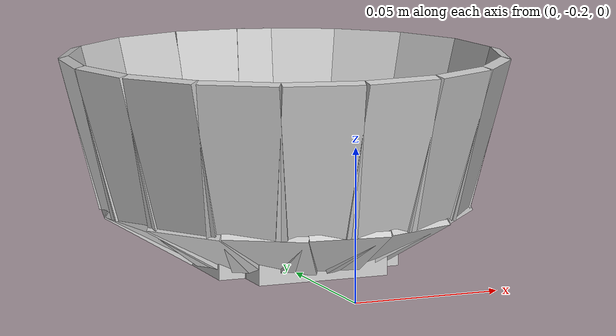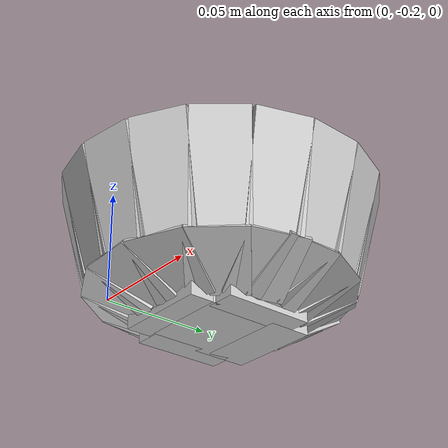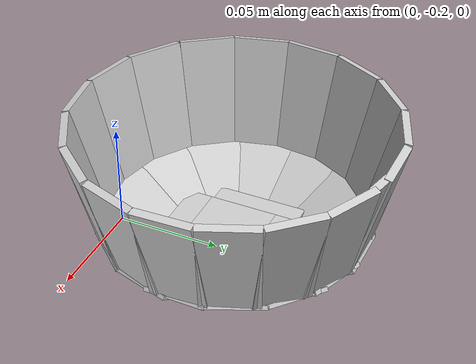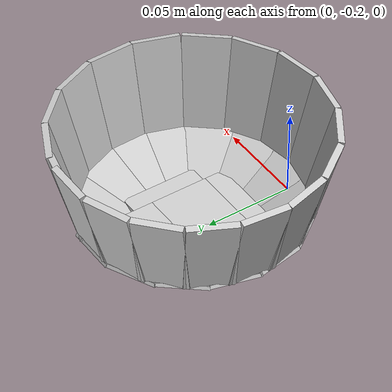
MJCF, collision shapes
<?xml version='1.0' encoding='utf-8'?>
<mujoco model="large_akita_red_bowl">
  <asset>
    <texture file="red_texture.png" name="tex-akita_red_bowl" type="2d" />
    <material name="akita_red_bowl" reflectance="0.5" texrepeat="1 1" texture="tex-akita_red_bowl" texuniform="false" />
    <mesh file="visual/akita_bowl_vis.msh" name="akita_bowl_vis" scale="0.98 0.98 0.98" />
  </asset>
  <worldbody>
    <body>
      <body name="object" pos="0.0 -0.13999999999999999 0.0">
        <geom solimp="0.998 0.998 0.001" solref="0.001 1" density="100" friction="0.95 0.3 0.1" type="mesh" mesh="akita_bowl_vis" conaffinity="0" contype="0" group="1" material="akita_red_bowl" />
        <geom solimp="0.998 0.998 0.001" solref="0.001 1" density="100" friction="0.95 0.3 0.1" type="box" pos="-0.00014 0.047054 0.013146" quat="0.60990 -0.35780 -0.35780 -0.60990" size="0.0009939999999999999 0.013888 0.016618" group="0" rgba="0.8 0.8 0.8 0.3" />
        <geom solimp="0.998 0.998 0.001" solref="0.001 1" density="100" friction="0.95 0.3 0.1" type="box" pos="-0.020565999999999997 0.042238 0.013425999999999999" quat="0.45959 -0.42672 0.26704 0.73169" size="0.0009939999999999999 0.013888 0.016618" group="0" rgba="0.8 0.8 0.8 0.3" />
        <geom solimp="0.998 0.998 0.001" solref="0.001 1" density="100" friction="0.95 0.3 0.1" type="box" pos="-0.036469999999999995 0.029512 0.013649999999999999" quat="0.29172 -0.47299 0.16619 0.81459" size="0.0009939999999999999 0.013888 0.016618" group="0" rgba="0.8 0.8 0.8 0.3" />
        <geom solimp="0.998 0.998 0.001" solref="0.001 1" density="100" friction="0.95 0.3 0.1" type="box" pos="-0.045542 0.011101999999999999 0.013775999999999998" quat="0.10855 -0.49698 0.05658 0.85908" size="0.0009939999999999999 0.013888 0.016618" group="0" rgba="0.8 0.8 0.8 0.3" />
        <geom solimp="0.998 0.998 0.001" solref="0.001 1" density="100" friction="0.95 0.3 0.1" type="box" pos="-0.046018 -0.008889999999999999 0.013775999999999998" quat="0.49761 -0.07722 0.86246 0.05074" size="0.0009939999999999999 0.013888 0.016618" group="0" rgba="0.8 0.8 0.8 0.3" />
        <geom solimp="0.998 0.998 0.001" solref="0.001 1" density="100" friction="0.95 0.3 0.1" type="box" pos="-0.037688 -0.02786 0.013775999999999998" quat="0.47408 -0.26597 0.82406 0.15949" size="0.0009939999999999999 0.013888 0.016618" group="0" rgba="0.8 0.8 0.8 0.3" />
        <geom solimp="0.998 0.998 0.001" solref="0.001 1" density="100" friction="0.95 0.3 0.1" type="box" pos="-0.021797999999999998 -0.041496 0.013775999999999998" quat="0.42646 -0.44336 0.74380 0.26138" size="0.0009939999999999999 0.013888 0.016618" group="0" rgba="0.8 0.8 0.8 0.3" />
        <geom solimp="0.998 0.998 0.001" solref="0.001 1" density="100" friction="0.95 0.3 0.1" type="box" pos="-0.0016939999999999998 -0.04684399999999999 0.013775999999999998" quat="0.59728 0.35787 0.34946 -0.62695" size="0.0009939999999999999 0.013888 0.016618" group="0" rgba="0.8 0.8 0.8 0.3" />
        <geom solimp="0.998 0.998 0.001" solref="0.001 1" density="100" friction="0.95 0.3 0.1" type="box" pos="0.018913999999999997 -0.042881999999999997 0.013775999999999998" quat="0.72249 0.27055 0.42070 -0.47731" size="0.0009939999999999999 0.013888 0.016618" group="0" rgba="0.8 0.8 0.8 0.3" />
        <geom solimp="0.998 0.998 0.001" solref="0.001 1" density="100" friction="0.95 0.3 0.1" type="box" pos="0.035322 -0.030813999999999994 0.013775999999999998" quat="0.17267 -0.80894 0.30891 0.46945" size="0.0009939999999999999 0.013888 0.016618" group="0" rgba="0.8 0.8 0.8 0.3" />
        <geom solimp="0.998 0.998 0.001" solref="0.001 1" density="100" friction="0.95 0.3 0.1" type="box" pos="0.045107999999999995 -0.01274 0.013775999999999998" quat="0.85700 0.06550 0.49588 -0.12397" size="0.0009939999999999999 0.013888 0.016618" group="0" rgba="0.8 0.8 0.8 0.3" />
        <geom solimp="0.998 0.998 0.001" solref="0.001 1" density="100" friction="0.95 0.3 0.1" type="box" pos="0.045107999999999995 -0.01274 0.013775999999999998" quat="0.85700 0.06550 0.49588 -0.12397" size="0.0009939999999999999 0.013888 0.016618" group="0" rgba="0.8 0.8 0.8 0.3" />
        <geom solimp="0.998 0.998 0.001" solref="0.001 1" density="100" friction="0.95 0.3 0.1" type="box" pos="0.046872000000000004 0.000308 0.013775999999999998" quat="0.86591 -0.00473 0.50017 -0.00248" size="0.0009939999999999999 0.013888 0.016618" group="0" rgba="0.8 0.8 0.8 0.3" />
        <geom solimp="0.998 0.998 0.001" solref="0.001 1" density="100" friction="0.95 0.3 0.1" type="box" pos="0.042504 0.019753999999999997 0.013775999999999998" quat="0.84663 -0.11101 0.48771 0.18175" size="0.0009939999999999999 0.013888 0.016618" group="0" rgba="0.8 0.8 0.8 0.3" />
        <geom solimp="0.998 0.998 0.001" solref="0.001 1" density="100" friction="0.95 0.3 0.1" type="box" pos="0.030183999999999996 0.035868 0.013775999999999998" quat="0.21392 0.78724 0.36065 -0.45213" size="0.0009939999999999999 0.013888 0.016618" group="0" rgba="0.8 0.8 0.8 0.3" />
        <geom solimp="0.998 0.998 0.001" solref="0.001 1" density="100" friction="0.95 0.3 0.1" type="box" pos="0.016198 0.04398799999999999 0.013775999999999998" quat="0.71324 -0.28870 0.40847 0.49101" size="0.0009939999999999999 0.013888 0.016618" group="0" rgba="0.8 0.8 0.8 0.3" />
        <geom solimp="0.998 0.998 0.001" solref="0.001 1" density="100" friction="0.95 0.3 0.1" type="box" pos="-0.00014 0.065968 0.04713799999999999" quat="0.09041 0.70130 0.70130 -0.09041" size="0.001792 0.013075999999999999 0.02625" group="0" rgba="0.8 0.8 0.8 0.3" />
        <geom solimp="0.998 0.998 0.001" solref="0.001 1" density="100" friction="0.95 0.3 0.1" type="box" pos="-0.024135999999999998 0.06138999999999999 0.04713799999999999" quat="0.10558 0.55930 0.81905 -0.07209" size="0.001792 0.013075999999999999 0.02625" group="0" rgba="0.8 0.8 0.8 0.3" />
        <geom solimp="0.998 0.998 0.001" solref="0.001 1" density="100" friction="0.95 0.3 0.1" type="box" pos="-0.044435999999999996 0.048762 0.04713799999999999" quat="0.11689 0.40164 0.90683 -0.05176" size="0.001792 0.013075999999999999 0.02625" group="0" rgba="0.8 0.8 0.8 0.3" />
        <geom solimp="0.998 0.998 0.001" solref="0.001 1" density="100" friction="0.95 0.3 0.1" type="box" pos="-0.05899599999999999 0.029512 0.04713799999999999" quat="0.22890 -0.12439 0.02951 0.96502" size="0.001792 0.013075999999999999 0.02625" group="0" rgba="0.8 0.8 0.8 0.3" />
        <geom solimp="0.998 0.998 0.001" solref="0.001 1" density="100" friction="0.95 0.3 0.1" type="box" pos="-0.065646 0.0064399999999999995 0.04713799999999999" quat="0.12768 0.04949 0.99056 -0.00638" size="0.001792 0.013075999999999999 0.02625" group="0" rgba="0.8 0.8 0.8 0.3" />
        <geom solimp="0.998 0.998 0.001" solref="0.001 1" density="100" friction="0.95 0.3 0.1" type="box" pos="-0.06377 -0.016856 0.04713799999999999" quat="0.12679 0.12680 0.01635 -0.98366" size="0.001792 0.013075999999999999 0.02625" group="0" rgba="0.8 0.8 0.8 0.3" />
        <geom solimp="0.998 0.998 0.001" solref="0.001 1" density="100" friction="0.95 0.3 0.1" type="box" pos="-0.05354999999999999 -0.038514 0.04713799999999999" quat="0.12173 -0.30325 0.94430 0.03909" size="0.001792 0.013075999999999999 0.02625" group="0" rgba="0.8 0.8 0.8 0.3" />
        <geom solimp="0.998 0.998 0.001" solref="0.001 1" density="100" friction="0.95 0.3 0.1" type="box" pos="-0.036064 -0.055244 0.04713799999999999" quat="0.11249 -0.47128 0.87267 0.06075" size="0.001792 0.013075999999999999 0.02625" group="0" rgba="0.8 0.8 0.8 0.3" />
        <geom solimp="0.998 0.998 0.001" solref="0.001 1" density="100" friction="0.95 0.3 0.1" type="box" pos="-0.014139999999999998 -0.064428 0.04713799999999999" quat="0.62080 0.09971 0.08003 -0.77348" size="0.001792 0.013075999999999999 0.02625" group="0" rgba="0.8 0.8 0.8 0.3" />
        <geom solimp="0.998 0.998 0.001" solref="0.001 1" density="100" friction="0.95 0.3 0.1" type="box" pos="0.009772 -0.06524 0.04713799999999999" quat="0.75082 0.08352 0.09678 -0.64802" size="0.001792 0.013075999999999999 0.02625" group="0" rgba="0.8 0.8 0.8 0.3" />
        <geom solimp="0.998 0.998 0.001" solref="0.001 1" density="100" friction="0.95 0.3 0.1" type="box" pos="0.032549999999999996 -0.057372 0.04713799999999999" quat="0.06445 -0.85651 0.50004 0.11041" size="0.001792 0.013075999999999999 0.02625" group="0" rgba="0.8 0.8 0.8 0.3" />
        <geom solimp="0.998 0.998 0.001" solref="0.001 1" density="100" friction="0.95 0.3 0.1" type="box" pos="0.050834 -0.042041999999999996 0.04713799999999999" quat="0.93283 0.04342 0.12024 -0.33687" size="0.001792 0.013075999999999999 0.02625" group="0" rgba="0.8 0.8 0.8 0.3" />
        <geom solimp="0.998 0.998 0.001" solref="0.001 1" density="100" friction="0.95 0.3 0.1" type="box" pos="0.06265 -0.020649999999999998 0.04713799999999999" quat="0.02040 -0.97909 0.15826 0.12620" size="0.001792 0.013075999999999999 0.02625" group="0" rgba="0.8 0.8 0.8 0.3" />
        <geom solimp="0.998 0.998 0.001" solref="0.001 1" density="100" friction="0.95 0.3 0.1" type="box" pos="0.06591199999999998 0.00259 0.04713799999999999" quat="0.00238 0.99162 0.01844 -0.12782" size="0.001792 0.013075999999999999 0.02625" group="0" rgba="0.8 0.8 0.8 0.3" />
        <geom solimp="0.998 0.998 0.001" solref="0.001 1" density="100" friction="0.95 0.3 0.1" type="box" pos="0.06591199999999998 0.00259 0.04713799999999999" quat="0.00238 0.99162 0.01844 -0.12782" size="0.001792 0.013075999999999999 0.02625" group="0" rgba="0.8 0.8 0.8 0.3" />
        <geom solimp="0.998 0.998 0.001" solref="0.001 1" density="100" friction="0.95 0.3 0.1" type="box" pos="0.060773999999999995 0.025647999999999997 0.04713799999999999" quat="0.02524 0.97229 0.19574 -0.12533" size="0.001792 0.013075999999999999 0.02625" group="0" rgba="0.8 0.8 0.8 0.3" />
        <geom solimp="0.998 0.998 0.001" solref="0.001 1" density="100" friction="0.95 0.3 0.1" type="box" pos="0.047824 0.04543 0.04713799999999999" quat="0.04729 0.92146 0.36683 -0.11878" size="0.001792 0.013075999999999999 0.02625" group="0" rgba="0.8 0.8 0.8 0.3" />
        <geom solimp="0.998 0.998 0.001" solref="0.001 1" density="100" friction="0.95 0.3 0.1" type="box" pos="0.028938 0.059276 0.04713799999999999" quat="0.06760 0.84175 0.52452 -0.10850" size="0.001792 0.013075999999999999 0.02625" group="0" rgba="0.8 0.8 0.8 0.3" />
        <geom solimp="0.998 0.998 0.001" solref="0.001 1" density="100" friction="0.95 0.3 0.1" type="box" pos="0.014783999999999999 0.064288 0.04713799999999999" quat="0.07953 0.77656 0.61693 -0.10010" size="0.0017499999999999998 0.006216 0.026208" group="0" rgba="0.8 0.8 0.8 0.3" />
        <geom solimp="0.998 0.998 0.001" solref="0.001 1" density="100" friction="0.95 0.3 0.1" type="box" pos="-0.0 -0.00105 0.0058379999999999994" quat="0.70711 0.00000 0.70711 0.00000" size="0.0036119999999999993 0.021657999999999997 0.022638" group="0" rgba="0.8 0.8 0.8 0.3" />
        <geom solimp="0.998 0.998 0.001" solref="0.001 1" density="100" friction="0.95 0.3 0.1" type="box" pos="-0.0 -0.028293999999999996 0.0058379999999999994" quat="0.70711 0.00000 0.70711 0.00000" size="0.0036119999999999993 0.006033999999999999 0.022638" group="0" rgba="0.8 0.8 0.8 0.3" />
        <geom solimp="0.998 0.998 0.001" solref="0.001 1" density="100" friction="0.95 0.3 0.1" type="box" pos="0.025494 0.000224 0.0058379999999999994" quat="0.50000 -0.50000 0.50000 0.50000" size="0.0036119999999999993 0.00693 0.021657999999999997" group="0" rgba="0.8 0.8 0.8 0.3" />
        <geom solimp="0.998 0.998 0.001" solref="0.001 1" density="100" friction="0.95 0.3 0.1" type="box" pos="-0.02534 5.6e-05 0.0058379999999999994" quat="0.50000 -0.50000 0.50000 0.50000" size="0.0036119999999999993 0.0063419999999999995 0.021657999999999997" group="0" rgba="0.8 0.8 0.8 0.3" />
        <geom solimp="0.998 0.998 0.001" solref="0.001 1" density="100" friction="0.95 0.3 0.1" type="box" pos="-0.0 0.02086 0.0058379999999999994" quat="0.00000 0.70711 0.00000 -0.70711" size="0.0036119999999999993 0.010374 0.022638" group="0" rgba="0.8 0.8 0.8 0.3" />
      </body>
      <site rgba="0 0 0 0" size="0.006999999999999999" pos="0.0 0.0 -0.08399999999999999" name="bottom_site" />
      <site rgba="0 0 0 0" size="0.006999999999999999" pos="0.0 0.0 0.055999999999999994" name="top_site" />
      <site rgba="0 0 0 0" size="0.006999999999999999" pos="0.034999999999999996 0.034999999999999996 0.0" name="horizontal_radius_site" />
    </body>
  </worldbody>
</mujoco>
